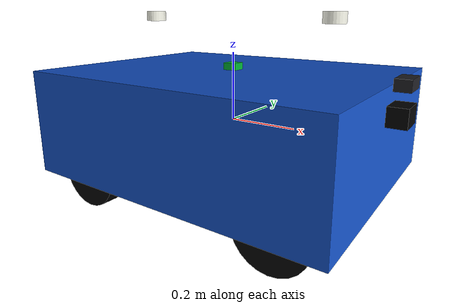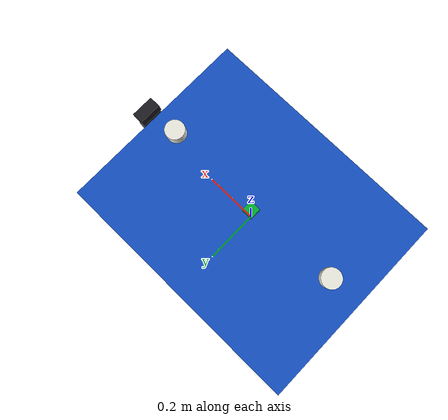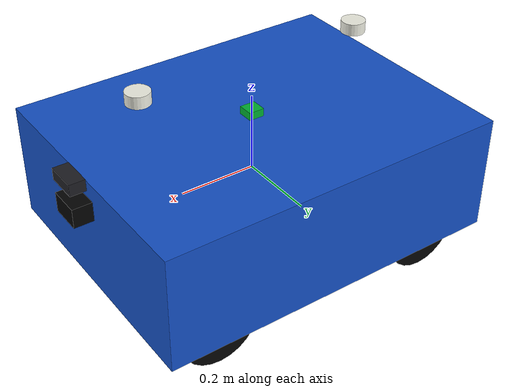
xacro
<?xml version="1.0"?>
<robot name="ackermann_car"
  xmlns:xacro="http://www.ros.org/wiki/xacro">
  <xacro:arg name="robot_namespace" default="ackermann_car"/>
  <xacro:arg name="sonar_max_range" default="3.0"/>
  <xacro:arg name="sonar_fov" default="0.5235987756"/>

  <xacro:property name="ns" value="$(arg robot_namespace)"/>
  <xacro:property name="body_length" value="0.90"/>
  <xacro:property name="body_width" value="0.70"/>
  <xacro:property name="body_height" value="0.30"/>
  <xacro:property name="wheel_radius" value="0.10"/>
  <xacro:property name="wheel_width" value="0.055"/>
  <xacro:property name="wheelbase" value="0.60"/>
  <xacro:property name="track" value="0.56"/>
  <xacro:property name="front_x" value="0.30"/>
  <xacro:property name="rear_x" value="-0.30"/>
  <xacro:property name="wheel_z" value="-0.14"/>
  <xacro:property name="camera_width" value="640"/>
  <xacro:property name="camera_height" value="480"/>
  <xacro:property name="camera_fx" value="615.000365"/>
  <xacro:property name="camera_cx" value="320.0"/>
  <xacro:property name="camera_cy" value="240.0"/>
  <xacro:property name="sonar_min_range" value="0.01"/>
  <xacro:property name="sonar_max_range_m" value="$(arg sonar_max_range)"/>
  <xacro:property name="sonar_fov_rad" value="$(arg sonar_fov)"/>

  <xacro:macro name="box_inertia" params="mass x y z">
    <inertial>
      <mass value="${mass}"/>
      <origin xyz="0 0 0" rpy="0 0 0"/>
      <inertia ixx="${mass * (y * y + z * z) / 12.0}" ixy="0" ixz="0" iyy="${mass * (x * x + z * z) / 12.0}" iyz="0" izz="${mass * (x * x + y * y) / 12.0}"/>
    </inertial>
  </xacro:macro>

  <xacro:macro name="cylinder_inertia_x" params="mass radius length">
    <inertial>
      <mass value="${mass}"/>
      <origin xyz="0 0 0" rpy="0 0 0"/>
      <inertia ixx="${mass * (3.0 * radius * radius + length * length) / 12.0}" ixy="0" ixz="0" iyy="${0.5 * mass * radius * radius}" iyz="0" izz="${mass * (3.0 * radius * radius + length * length) / 12.0}"/>
    </inertial>
  </xacro:macro>

  <xacro:macro name="wheel_link" params="name visual:=true collision:=true">
    <link name="${name}">
      <xacro:cylinder_inertia_x mass="0.8" radius="${wheel_radius}" length="${wheel_width}"/>
      <xacro:if value="${collision}">
        <collision>
          <origin xyz="0 0 0" rpy="1.57079632679 0 0"/>
          <geometry>
            <cylinder radius="${wheel_radius}" length="${wheel_width}"/>
          </geometry>
          <surface>
            <friction>
              <ode>
                <mu>2.0</mu>
                <mu2>2.0</mu2>
              </ode>
            </friction>
            <contact>
              <ode>
                <kp>1000000.0</kp>
                <kd>1.0</kd>
                <max_vel>0.1</max_vel>
                <min_depth>0.001</min_depth>
              </ode>
            </contact>
          </surface>
        </collision>
      </xacro:if>
      <xacro:if value="${visual}">
        <visual>
          <origin xyz="0 0 0" rpy="1.57079632679 0 0"/>
          <geometry>
            <cylinder radius="${wheel_radius}" length="${wheel_width}"/>
          </geometry>
          <material name="wheel_black">
            <color rgba="0.02 0.02 0.02 1"/>
          </material>
        </visual>
      </xacro:if>
    </link>
  </xacro:macro>

  <link name="base_link">
    <xacro:box_inertia mass="18.0" x="${body_length}" y="${body_width}" z="${body_height}"/>
    <collision>
      <origin xyz="0 0 0.04" rpy="0 0 0"/>
      <geometry>
        <box size="${body_length} ${body_width} 0.22"/>
      </geometry>
    </collision>
    <visual>
      <origin xyz="0 0 0" rpy="0 0 0"/>
      <geometry>
        <box size="${body_length} ${body_width} ${body_height}"/>
      </geometry>
      <material name="body_blue">
        <color rgba="0.08 0.32 0.78 1"/>
      </material>
    </visual>
  </link>

  <link name="front_steering_link">
    <xacro:box_inertia mass="0.6" x="0.10" y="0.08" z="0.05"/>
    <collision>
      <origin xyz="0 0 0" rpy="0 0 0"/>
      <geometry>
        <box size="0.10 0.08 0.05"/>
      </geometry>
    </collision>
    <visual>
      <origin xyz="0 0 0" rpy="0 0 0"/>
      <geometry>
        <box size="0.10 0.08 0.05"/>
      </geometry>
      <material name="steering_grey">
        <color rgba="0.25 0.25 0.25 0.35"/>
      </material>
    </visual>
  </link>

  <joint name="front_steering_joint" type="revolute">
    <parent link="base_link"/>
    <child link="front_steering_link"/>
    <origin xyz="${front_x} 0 ${wheel_z}" rpy="0 0 0"/>
    <axis xyz="0 0 1"/>
    <limit lower="-0.70" upper="0.70" effort="60" velocity="1.5"/>
    <dynamics damping="0.2" friction="0.05"/>
  </joint>

  <xacro:wheel_link name="front_wheel_link" visual="false"/>
  <joint name="front_wheel_joint" type="continuous">
    <parent link="front_steering_link"/>
    <child link="front_wheel_link"/>
    <origin xyz="0 0 0" rpy="0 0 0"/>
    <axis xyz="0 1 0"/>
    <dynamics damping="0.02" friction="0.02"/>
  </joint>

  <xacro:wheel_link name="left_front_wheel_link" collision="false"/>
  <joint name="left_front_wheel_joint" type="fixed">
    <parent link="front_steering_link"/>
    <child link="left_front_wheel_link"/>
    <origin xyz="0 ${track / 2.0} 0" rpy="0 0 0"/>
  </joint>

  <xacro:wheel_link name="right_front_wheel_link" collision="false"/>
  <joint name="right_front_wheel_joint" type="fixed">
    <parent link="front_steering_link"/>
    <child link="right_front_wheel_link"/>
    <origin xyz="0 ${-track / 2.0} 0" rpy="0 0 0"/>
  </joint>

  <xacro:wheel_link name="left_wheel_link"/>
  <joint name="left_wheel_joint" type="continuous">
    <parent link="base_link"/>
    <child link="left_wheel_link"/>
    <origin xyz="${rear_x} ${track / 2.0} ${wheel_z}" rpy="0 0 0"/>
    <axis xyz="0 1 0"/>
    <dynamics damping="0.02" friction="0.02"/>
  </joint>

  <xacro:wheel_link name="right_wheel_link"/>
  <joint name="right_wheel_joint" type="continuous">
    <parent link="base_link"/>
    <child link="right_wheel_link"/>
    <origin xyz="${rear_x} ${-track / 2.0} ${wheel_z}" rpy="0 0 0"/>
    <axis xyz="0 1 0"/>
    <dynamics damping="0.02" friction="0.02"/>
  </joint>

  <link name="imu_link">
    <xacro:box_inertia mass="0.05" x="0.04" y="0.04" z="0.02"/>
    <visual>
      <geometry>
        <box size="0.04 0.04 0.02"/>
      </geometry>
      <material name="sensor_green">
        <color rgba="0.0 0.7 0.2 1"/>
      </material>
    </visual>
  </link>
  <joint name="imu_joint" type="fixed">
    <parent link="base_link"/>
    <child link="imu_link"/>
    <origin xyz="0 0 0.16" rpy="0 0 0"/>
  </joint>

  <link name="front_camera_link">
    <xacro:box_inertia mass="0.12" x="0.05" y="0.08" z="0.05"/>
    <collision>
      <geometry>
        <box size="0.05 0.08 0.05"/>
      </geometry>
    </collision>
    <visual>
      <geometry>
        <box size="0.05 0.08 0.05"/>
      </geometry>
      <material name="camera_black">
        <color rgba="0.01 0.01 0.01 1"/>
      </material>
    </visual>
  </link>
  <joint name="front_camera_joint" type="fixed">
    <parent link="base_link"/>
    <child link="front_camera_link"/>
    <origin xyz="0.475 0 0.08" rpy="0 0 0"/>
  </joint>

  <link name="front_camera_optical_link">
    <xacro:box_inertia mass="0.01" x="0.01" y="0.01" z="0.01"/>
  </link>
  <joint name="front_camera_optical_joint" type="fixed">
    <parent link="front_camera_link"/>
    <child link="front_camera_optical_link"/>
    <origin xyz="0.03 0 0" rpy="-1.57079632679 0 -1.57079632679"/>
  </joint>

  <link name="front_sonar_link">
    <xacro:box_inertia mass="0.08" x="0.04" y="0.08" z="0.03"/>
    <collision>
      <origin xyz="-0.025 0 0" rpy="0 0 0"/>
      <geometry>
        <box size="0.04 0.08 0.03"/>
      </geometry>
    </collision>
    <visual>
      <origin xyz="-0.025 0 0" rpy="0 0 0"/>
      <geometry>
        <box size="0.04 0.08 0.03"/>
      </geometry>
      <material name="sonar_grey">
        <color rgba="0.12 0.12 0.14 1"/>
      </material>
    </visual>
  </link>
  <joint name="front_sonar_joint" type="fixed">
    <parent link="base_link"/>
    <child link="front_sonar_link"/>
    <origin xyz="0.505 0 0.155" rpy="0 0 0"/>
  </joint>

  <link name="rtk_front_link">
    <xacro:box_inertia mass="0.05" x="0.06" y="0.06" z="0.03"/>
    <visual>
      <geometry>
        <cylinder radius="0.03" length="0.03"/>
      </geometry>
      <material name="rtk_white">
        <color rgba="0.95 0.95 0.9 1"/>
      </material>
    </visual>
  </link>
  <joint name="rtk_front_joint" type="fixed">
    <parent link="base_link"/>
    <child link="rtk_front_link"/>
    <origin xyz="0.30 0 0.30" rpy="0 0 0"/>
  </joint>

  <link name="rtk_rear_link">
    <xacro:box_inertia mass="0.05" x="0.06" y="0.06" z="0.03"/>
    <visual>
      <geometry>
        <cylinder radius="0.03" length="0.03"/>
      </geometry>
      <material name="rtk_white"/>
    </visual>
  </link>
  <joint name="rtk_rear_joint" type="fixed">
    <parent link="base_link"/>
    <child link="rtk_rear_link"/>
    <origin xyz="-0.30 0 0.30" rpy="0 0 0"/>
  </joint>

  <gazebo reference="base_link">
    <mu1>0.8</mu1>
    <mu2>0.8</mu2>
    <material>Gazebo/Blue</material>
  </gazebo>

  <gazebo reference="left_wheel_link">
    <mu1>1.2</mu1>
    <mu2>1.2</mu2>
    <material>Gazebo/Black</material>
  </gazebo>

  <gazebo reference="right_wheel_link">
    <mu1>1.2</mu1>
    <mu2>1.2</mu2>
    <material>Gazebo/Black</material>
  </gazebo>

  <gazebo reference="front_wheel_link">
    <mu1>1.2</mu1>
    <mu2>1.2</mu2>
    <material>Gazebo/Black</material>
  </gazebo>

  <gazebo reference="left_front_wheel_link">
    <mu1>0.05</mu1>
    <mu2>0.05</mu2>
    <material>Gazebo/Black</material>
  </gazebo>

  <gazebo reference="right_front_wheel_link">
    <mu1>0.05</mu1>
    <mu2>0.05</mu2>
    <material>Gazebo/Black</material>
  </gazebo>

  <gazebo reference="imu_link">
    <sensor name="imu_sensor" type="imu">
      <always_on>true</always_on>
      <update_rate>100</update_rate>
      <visualize>true</visualize>
      <plugin name="imu_controller" filename="libgazebo_ros_imu_sensor.so">
        <robotNamespace>/${ns}</robotNamespace>
        <topicName>imu/data</topicName>
        <frameName>imu_link</frameName>
        <updateRateHZ>100.0</updateRateHZ>
        <gaussianNoise>0.0002</gaussianNoise>
      </plugin>
    </sensor>
  </gazebo>

  <gazebo reference="front_camera_link">
    <sensor name="front_rgb_camera" type="camera">
      <always_on>true</always_on>
      <update_rate>30</update_rate>
      <visualize>true</visualize>
      <camera>
        <horizontal_fov>${2.0 * atan(camera_width / (2.0 * camera_fx))}</horizontal_fov>
        <image>
          <width>${camera_width}</width>
          <height>${camera_height}</height>
          <format>R8G8B8</format>
        </image>
        <clip>
          <near>0.05</near>
          <far>100.0</far>
        </clip>
      </camera>
      <plugin name="front_camera_controller" filename="libgazebo_ros_camera.so">
        <robotNamespace>/${ns}</robotNamespace>
        <alwaysOn>true</alwaysOn>
        <updateRate>30.0</updateRate>
        <cameraName>front_camera</cameraName>
        <imageTopicName>image_raw</imageTopicName>
        <cameraInfoTopicName>camera_info</cameraInfoTopicName>
        <frameName>front_camera_optical_link</frameName>
        <focalLength>${camera_fx}</focalLength>
        <Cx>${camera_cx}</Cx>
        <Cy>${camera_cy}</Cy>
        <CxPrime>${camera_cx}</CxPrime>
        <distortionK1>0.0</distortionK1>
        <distortionK2>0.0</distortionK2>
        <distortionK3>0.0</distortionK3>
        <distortionT1>0.0</distortionT1>
        <distortionT2>0.0</distortionT2>
      </plugin>
    </sensor>
  </gazebo>

  <gazebo reference="front_sonar_link">
    <sensor name="front_sonar" type="ray">
      <always_on>true</always_on>
      <update_rate>20</update_rate>
      <visualize>true</visualize>
      <ray>
        <scan>
          <horizontal>
            <samples>5</samples>
            <resolution>1</resolution>
            <min_angle>${-sonar_fov_rad / 2.0}</min_angle>
            <max_angle>${sonar_fov_rad / 2.0}</max_angle>
          </horizontal>
          <vertical>
            <samples>1</samples>
            <resolution>1</resolution>
            <min_angle>0.0</min_angle>
            <max_angle>0.0</max_angle>
          </vertical>
        </scan>
        <range>
          <min>${sonar_min_range}</min>
          <max>${sonar_max_range_m}</max>
          <resolution>0.01</resolution>
        </range>
      </ray>
      <plugin name="front_sonar_controller" filename="libhector_gazebo_ros_sonar.so">
        <robotNamespace>/${ns}</robotNamespace>
        <topicName>sonar/range</topicName>
        <frameId>front_sonar_link</frameId>
        <updateRate>20.0</updateRate>
        <gaussianNoise>0.0</gaussianNoise>
      </plugin>
    </sensor>
  </gazebo>

  <gazebo>
    <plugin name="tricycle_drive_controller" filename="libgazebo_ros_tricycle_drive.so">
      <robotNamespace>/${ns}</robotNamespace>
      <publishWheelTF>false</publishWheelTF>
      <publishWheelJointState>true</publishWheelJointState>
      <alwaysOn>true</alwaysOn>
      <steeringJoint>front_steering_joint</steeringJoint>
      <actuatedWheelJoint>front_wheel_joint</actuatedWheelJoint>
      <encoderWheelLeftJoint>left_wheel_joint</encoderWheelLeftJoint>
      <encoderWheelRightJoint>right_wheel_joint</encoderWheelRightJoint>
      <actuatedWheelDiameter>${2.0 * wheel_radius}</actuatedWheelDiameter>
      <encoderWheelDiameter>${2.0 * wheel_radius}</encoderWheelDiameter>
      <encoderWheelSeparation>${track}</encoderWheelSeparation>
      <commandTopic>/${ns}/tricycle_cmd</commandTopic>
      <odometryTopic>/${ns}/odom</odometryTopic>
      <odometryFrame>/odom</odometryFrame>
      <odometrySource>world</odometrySource>
      <robotBaseFrame>/base_link</robotBaseFrame>
      <updateRate>100.0</updateRate>
      <wheelAcceleration>12.0</wheelAcceleration>
      <wheelDeceleration>16.0</wheelDeceleration>
      <wheelSpeedTolerance>0.02</wheelSpeedTolerance>
      <wheelTorque>120</wheelTorque>
      <steeringSpeed>0.0</steeringSpeed>
      <steeringAngleTolerance>0.01</steeringAngleTolerance>
    </plugin>
  </gazebo>
</robot>
